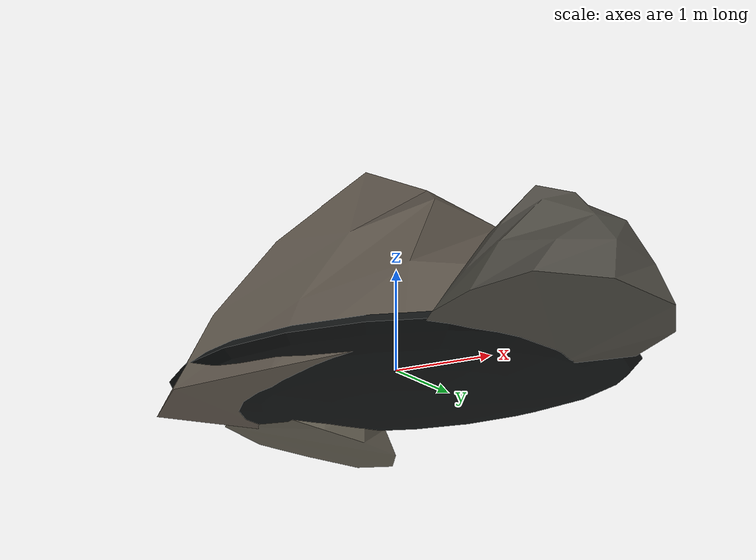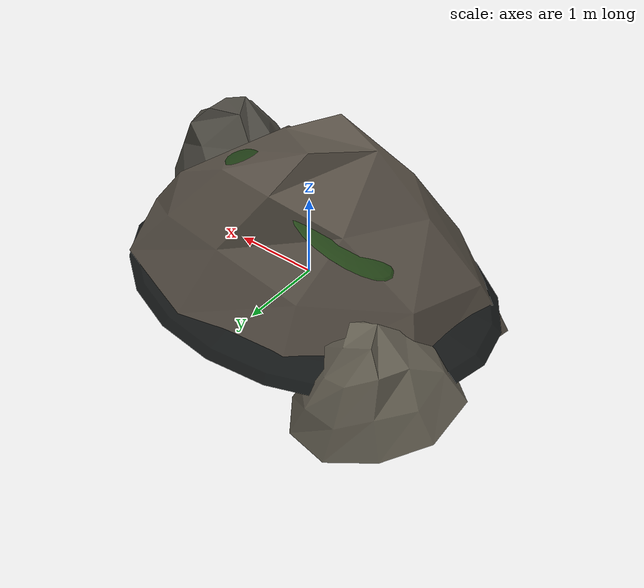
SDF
<?xml version="1.0"?>
<sdf version="1.10">
  <model name="rock_outcrop">
    <static>true</static>
    <link name="rocks">
      <!-- Simplified collision hulls keep contacts stable while the visuals stay irregular. -->
      <collision name="main_collision">
        <pose>0 0 0.6 0 0 0</pose>
        <geometry><ellipsoid><radii>2.1 1.55 1.25</radii></ellipsoid></geometry>
      </collision>
      <collision name="side_collision">
        <pose>2.25 -1.25 0.35 0 0 0</pose>
        <geometry><ellipsoid><radii>1.15 0.9 0.75</radii></ellipsoid></geometry>
      </collision>

      <visual name="main_rock">
        <pose>0 0 -0.15 0.06 -0.08 0.12</pose>
        <geometry>
          <mesh><uri>meshes/coastal_rock.obj</uri><scale>1.15 1 1</scale></mesh>
        </geometry>
        <material>
          <ambient>0.19 0.17 0.14 1</ambient>
          <diffuse>0.34 0.31 0.27 1</diffuse>
          <specular>0.06 0.06 0.05 1</specular>
        </material>
      </visual>
      <visual name="side_rock">
        <pose>2.15 -1.2 -0.22 -0.12 0.05 -0.72</pose>
        <geometry>
          <mesh><uri>meshes/coastal_rock.obj</uri><scale>0.62 0.58 0.55</scale></mesh>
        </geometry>
        <material>
          <ambient>0.15 0.145 0.13 1</ambient>
          <diffuse>0.29 0.28 0.25 1</diffuse>
          <specular>0.05 0.05 0.05 1</specular>
        </material>
      </visual>
      <visual name="rear_rock">
        <pose>-1.65 0.9 -0.35 0.08 0.18 1.05</pose>
        <geometry>
          <mesh><uri>meshes/coastal_rock.obj</uri><scale>0.48 0.54 0.48</scale></mesh>
        </geometry>
        <material>
          <ambient>0.21 0.2 0.17 1</ambient>
          <diffuse>0.38 0.36 0.31 1</diffuse>
        </material>
      </visual>

      <!-- Dark wet stone at the waterline and small moss patches break up flat colors. -->
      <visual name="wet_waterline">
        <pose>0 0 -0.08 0 0 0</pose>
        <geometry><ellipsoid><radii>2.35 1.75 0.28</radii></ellipsoid></geometry>
        <material>
          <ambient>0.035 0.045 0.045 1</ambient>
          <diffuse>0.07 0.08 0.08 1</diffuse>
          <specular>0.55 0.55 0.5 1</specular>
        </material>
      </visual>
      <visual name="moss_patch_a">
        <pose>-0.8 0.45 1.05 0.18 -0.35 0.15</pose>
        <geometry><ellipsoid><radii>0.62 0.35 0.04</radii></ellipsoid></geometry>
        <material>
          <ambient>0.08 0.16 0.055 1</ambient>
          <diffuse>0.14 0.27 0.09 1</diffuse>
        </material>
      </visual>
      <visual name="moss_patch_b">
        <pose>0.55 0.28 1.42 -0.1 0.25 -0.25</pose>
        <geometry><ellipsoid><radii>0.42 0.26 0.035</radii></ellipsoid></geometry>
        <material>
          <ambient>0.07 0.14 0.05 1</ambient>
          <diffuse>0.12 0.24 0.08 1</diffuse>
        </material>
      </visual>
    </link>
  </model>
</sdf>
